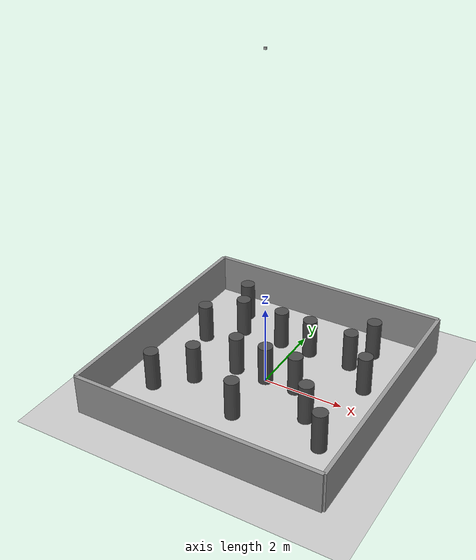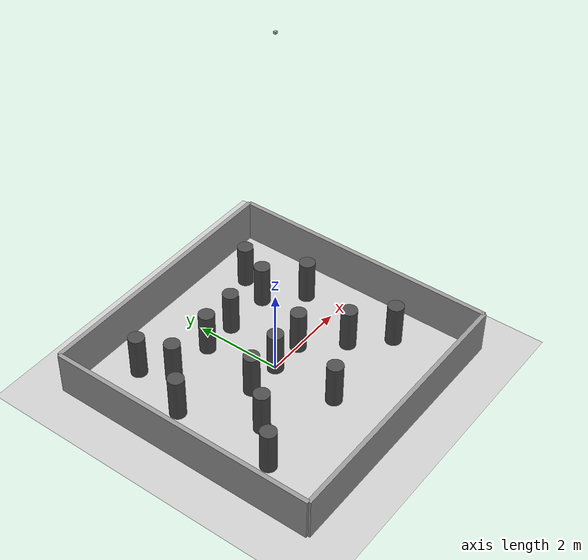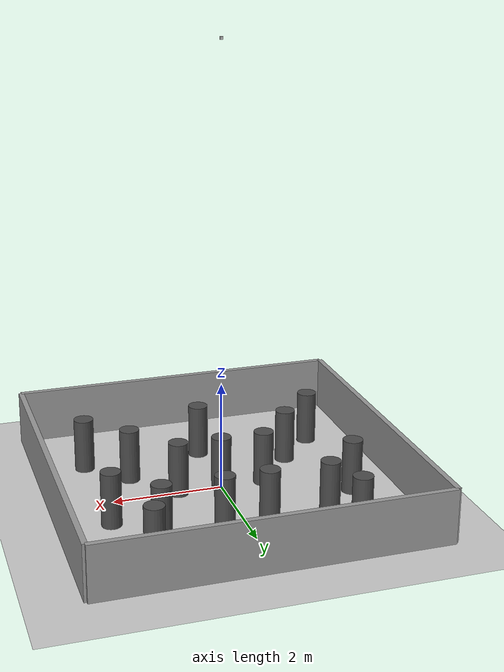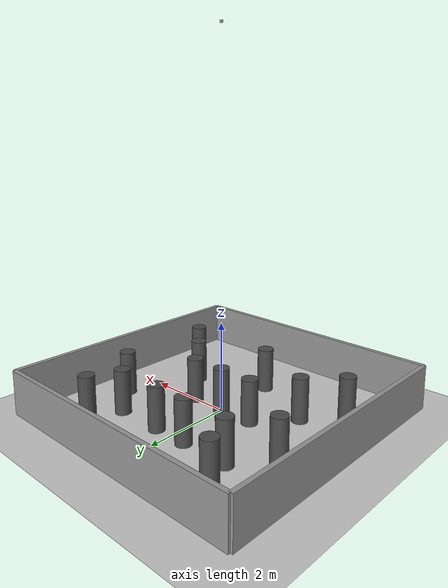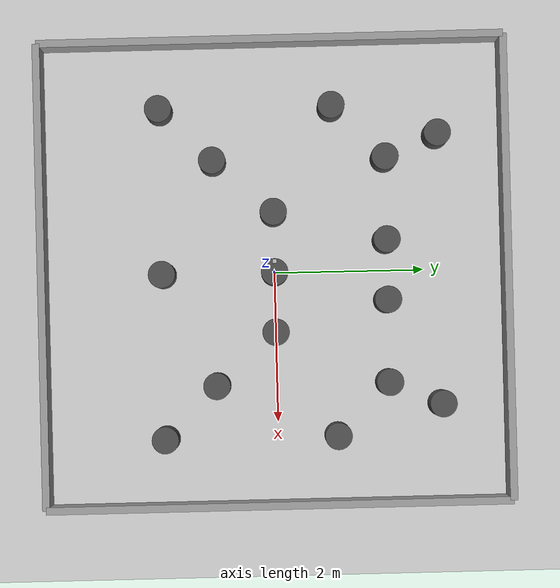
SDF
<?xml version="1.0" ?>
<sdf version="1.6">
  <world name="multi_agent_dense">

    <physics type="ode">
      <real_time_update_rate>1000.0</real_time_update_rate>
      <max_step_size>0.001</max_step_size>
      <real_time_factor>1.0</real_time_factor>
      <ode>
        <solver>
          <type>quick</type>
          <iters>150</iters>
          <sor>1.400000</sor>
        </solver>
        <constraints>
          <cfm>0.00001</cfm>
          <erp>0.2</erp>
          <contact_max_correcting_vel>2000.0</contact_max_correcting_vel>
          <contact_surface_layer>0.01</contact_surface_layer>
        </constraints>
      </ode>
    </physics>

    <include><uri>model://sun</uri></include>
    <include><uri>model://ground_plane</uri></include>

    <!-- Paredes (arena 6m × 6m) -->
    <model name="wall_north"><static>true</static><pose>0 3.1 0.5 0 0 0</pose>
      <link name="link">
        <collision name="col"><geometry><box><size>6.2 0.1 1.0</size></box></geometry></collision>
        <visual name="vis"><geometry><box><size>6.2 0.1 1.0</size></box></geometry>
          <material><script><name>Gazebo/Grey</name></script></material></visual>
      </link>
    </model>
    <model name="wall_south"><static>true</static><pose>0 -3.1 0.5 0 0 0</pose>
      <link name="link">
        <collision name="col"><geometry><box><size>6.2 0.1 1.0</size></box></geometry></collision>
        <visual name="vis"><geometry><box><size>6.2 0.1 1.0</size></box></geometry>
          <material><script><name>Gazebo/Grey</name></script></material></visual>
      </link>
    </model>
    <model name="wall_east"><static>true</static><pose>3.1 0 0.5 0 0 1.5708</pose>
      <link name="link">
        <collision name="col"><geometry><box><size>6.2 0.1 1.0</size></box></geometry></collision>
        <visual name="vis"><geometry><box><size>6.2 0.1 1.0</size></box></geometry>
          <material><script><name>Gazebo/Grey</name></script></material></visual>
      </link>
    </model>
    <model name="wall_west"><static>true</static><pose>-3.1 0 0.5 0 0 1.5708</pose>
      <link name="link">
        <collision name="col"><geometry><box><size>6.2 0.1 1.0</size></box></geometry></collision>
        <visual name="vis"><geometry><box><size>6.2 0.1 1.0</size></box></geometry>
          <material><script><name>Gazebo/Grey</name></script></material></visual>
      </link>
    </model>

    <!-- Corredor central (força cruzamento entre robôs) -->
    <model name="obs_0"><static>true</static><pose>-0.8  0.0 0.5 0 0 0</pose>
      <link name="link">
        <collision name="col"><geometry><cylinder><radius>0.18</radius><length>1.0</length></cylinder></geometry></collision>
        <visual name="vis"><geometry><cylinder><radius>0.18</radius><length>1.0</length></cylinder></geometry>
          <material><script><name>Gazebo/DarkGrey</name></script></material></visual>
      </link>
    </model>
    <model name="obs_1"><static>true</static><pose> 0.0  0.0 0.5 0 0 0</pose>
      <link name="link">
        <collision name="col"><geometry><cylinder><radius>0.18</radius><length>1.0</length></cylinder></geometry></collision>
        <visual name="vis"><geometry><cylinder><radius>0.18</radius><length>1.0</length></cylinder></geometry>
          <material><script><name>Gazebo/DarkGrey</name></script></material></visual>
      </link>
    </model>
    <model name="obs_2"><static>true</static><pose> 0.8  0.0 0.5 0 0 0</pose>
      <link name="link">
        <collision name="col"><geometry><cylinder><radius>0.18</radius><length>1.0</length></cylinder></geometry></collision>
        <visual name="vis"><geometry><cylinder><radius>0.18</radius><length>1.0</length></cylinder></geometry>
          <material><script><name>Gazebo/DarkGrey</name></script></material></visual>
      </link>
    </model>

    <!-- Quadrante NE -->
    <model name="obs_3"><static>true</static><pose> 1.5  1.5 0.5 0 0 0</pose>
      <link name="link">
        <collision name="col"><geometry><cylinder><radius>0.18</radius><length>1.0</length></cylinder></geometry></collision>
        <visual name="vis"><geometry><cylinder><radius>0.18</radius><length>1.0</length></cylinder></geometry>
          <material><script><name>Gazebo/DarkGrey</name></script></material></visual>
      </link>
    </model>
    <model name="obs_4"><static>true</static><pose> 2.2  0.8 0.5 0 0 0</pose>
      <link name="link">
        <collision name="col"><geometry><cylinder><radius>0.18</radius><length>1.0</length></cylinder></geometry></collision>
        <visual name="vis"><geometry><cylinder><radius>0.18</radius><length>1.0</length></cylinder></geometry>
          <material><script><name>Gazebo/DarkGrey</name></script></material></visual>
      </link>
    </model>
    <model name="obs_5"><static>true</static><pose> 1.8  2.2 0.5 0 0 0</pose>
      <link name="link">
        <collision name="col"><geometry><cylinder><radius>0.18</radius><length>1.0</length></cylinder></geometry></collision>
        <visual name="vis"><geometry><cylinder><radius>0.18</radius><length>1.0</length></cylinder></geometry>
          <material><script><name>Gazebo/DarkGrey</name></script></material></visual>
      </link>
    </model>

    <!-- Quadrante NW -->
    <model name="obs_6"><static>true</static><pose>-1.5  1.5 0.5 0 0 0</pose>
      <link name="link">
        <collision name="col"><geometry><cylinder><radius>0.18</radius><length>1.0</length></cylinder></geometry></collision>
        <visual name="vis"><geometry><cylinder><radius>0.18</radius><length>1.0</length></cylinder></geometry>
          <material><script><name>Gazebo/DarkGrey</name></script></material></visual>
      </link>
    </model>
    <model name="obs_7"><static>true</static><pose>-2.2  0.8 0.5 0 0 0</pose>
      <link name="link">
        <collision name="col"><geometry><cylinder><radius>0.18</radius><length>1.0</length></cylinder></geometry></collision>
        <visual name="vis"><geometry><cylinder><radius>0.18</radius><length>1.0</length></cylinder></geometry>
          <material><script><name>Gazebo/DarkGrey</name></script></material></visual>
      </link>
    </model>
    <model name="obs_8"><static>true</static><pose>-1.8  2.2 0.5 0 0 0</pose>
      <link name="link">
        <collision name="col"><geometry><cylinder><radius>0.18</radius><length>1.0</length></cylinder></geometry></collision>
        <visual name="vis"><geometry><cylinder><radius>0.18</radius><length>1.0</length></cylinder></geometry>
          <material><script><name>Gazebo/DarkGrey</name></script></material></visual>
      </link>
    </model>

    <!-- Quadrante SE (livre zona spawn robot2 em 2.5,-2.5) -->
    <model name="obs_9"><static>true</static><pose> 1.5 -0.8 0.5 0 0 0</pose>
      <link name="link">
        <collision name="col"><geometry><cylinder><radius>0.18</radius><length>1.0</length></cylinder></geometry></collision>
        <visual name="vis"><geometry><cylinder><radius>0.18</radius><length>1.0</length></cylinder></geometry>
          <material><script><name>Gazebo/DarkGrey</name></script></material></visual>
      </link>
    </model>
    <model name="obs_10"><static>true</static><pose> 2.2 -1.5 0.5 0 0 0</pose>
      <link name="link">
        <collision name="col"><geometry><cylinder><radius>0.18</radius><length>1.0</length></cylinder></geometry></collision>
        <visual name="vis"><geometry><cylinder><radius>0.18</radius><length>1.0</length></cylinder></geometry>
          <material><script><name>Gazebo/DarkGrey</name></script></material></visual>
      </link>
    </model>

    <!-- Quadrante SW (livre zona spawn robot1 em -2.5,-2.5) -->
    <model name="obs_11"><static>true</static><pose>-1.5 -0.8 0.5 0 0 0</pose>
      <link name="link">
        <collision name="col"><geometry><cylinder><radius>0.18</radius><length>1.0</length></cylinder></geometry></collision>
        <visual name="vis"><geometry><cylinder><radius>0.18</radius><length>1.0</length></cylinder></geometry>
          <material><script><name>Gazebo/DarkGrey</name></script></material></visual>
      </link>
    </model>
    <model name="obs_12"><static>true</static><pose>-2.2 -1.5 0.5 0 0 0</pose>
      <link name="link">
        <collision name="col"><geometry><cylinder><radius>0.18</radius><length>1.0</length></cylinder></geometry></collision>
        <visual name="vis"><geometry><cylinder><radius>0.18</radius><length>1.0</length></cylinder></geometry>
          <material><script><name>Gazebo/DarkGrey</name></script></material></visual>
      </link>
    </model>

    <!-- Obstáculos adicionais para atingir ρ≈0.38 -->
    <model name="obs_13"><static>true</static><pose>-0.4  1.5 0.5 0 0 0</pose>
      <link name="link">
        <collision name="col"><geometry><cylinder><radius>0.18</radius><length>1.0</length></cylinder></geometry></collision>
        <visual name="vis"><geometry><cylinder><radius>0.18</radius><length>1.0</length></cylinder></geometry>
          <material><script><name>Gazebo/DarkGrey</name></script></material></visual>
      </link>
    </model>
    <model name="obs_14"><static>true</static><pose> 0.4  1.5 0.5 0 0 0</pose>
      <link name="link">
        <collision name="col"><geometry><cylinder><radius>0.18</radius><length>1.0</length></cylinder></geometry></collision>
        <visual name="vis"><geometry><cylinder><radius>0.18</radius><length>1.0</length></cylinder></geometry>
          <material><script><name>Gazebo/DarkGrey</name></script></material></visual>
      </link>
    </model>
    <model name="obs_15"><static>true</static><pose> 0.0 -1.5 0.5 0 0 0</pose>
      <link name="link">
        <collision name="col"><geometry><cylinder><radius>0.18</radius><length>1.0</length></cylinder></geometry></collision>
        <visual name="vis"><geometry><cylinder><radius>0.18</radius><length>1.0</length></cylinder></geometry>
          <material><script><name>Gazebo/DarkGrey</name></script></material></visual>
      </link>
    </model>

    <!-- Câmera overhead a z=8m (cobre arena 6m com FOV 70°) -->
    <model name="camera_overhead">
      <static>true</static>
      <pose>0 0 8 0 1.5708 0</pose>
      <link name="link">
        <visual name="vis">
          <geometry><box><size>0.05 0.05 0.05</size></box></geometry>
        </visual>
        <sensor type="camera" name="camera_overhead">
          <update_rate>10</update_rate>
          <camera>
            <horizontal_fov>1.2217</horizontal_fov>
            <image><width>640</width><height>640</height><format>R8G8B8</format></image>
            <clip><near>0.1</near><far>20</far></clip>
          </camera>
          <plugin name="camera_controller" filename="libgazebo_ros_camera.so">
            <ros>
              <remapping>camera_overhead/image_raw:=camera/image_raw</remapping>
              <remapping>camera_overhead/camera_info:=camera/camera_info</remapping>
            </ros>
            <camera_name>camera_overhead</camera_name>
            <frame_name>camera_overhead_link</frame_name>
          </plugin>
        </sensor>
      </link>
    </model>

    <!-- GUI — visão top-down -->
    <gui fullscreen="0">
      <camera name="user_camera">
        <pose>0 0 10 0 1.5708 0</pose>
        <view_controller>orbit</view_controller>
      </camera>
    </gui>

  </world>
</sdf>
